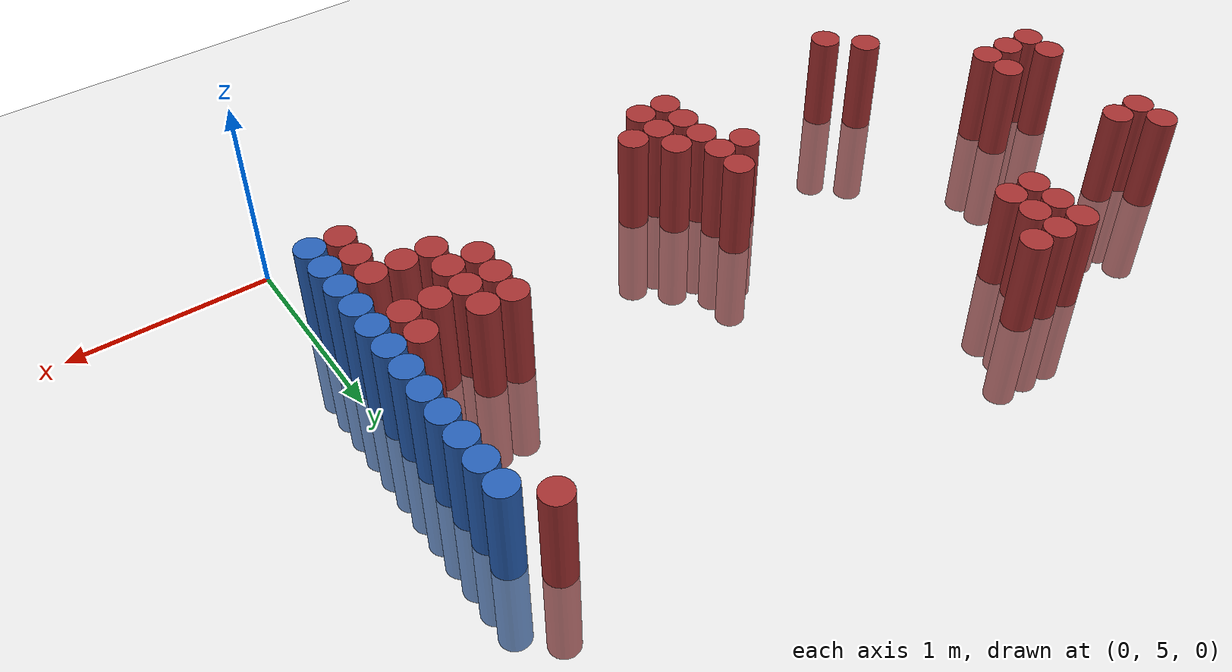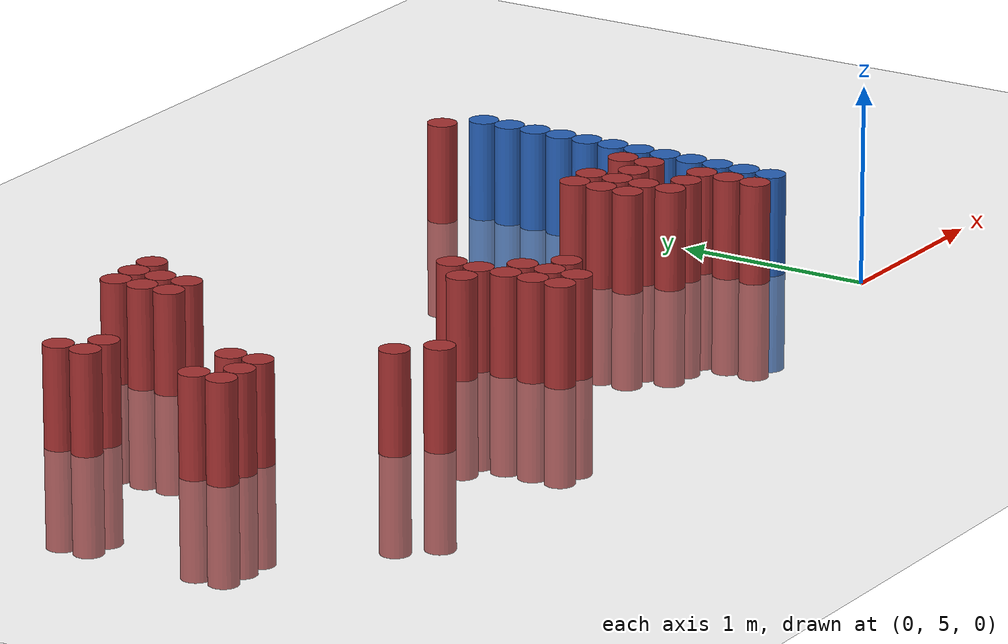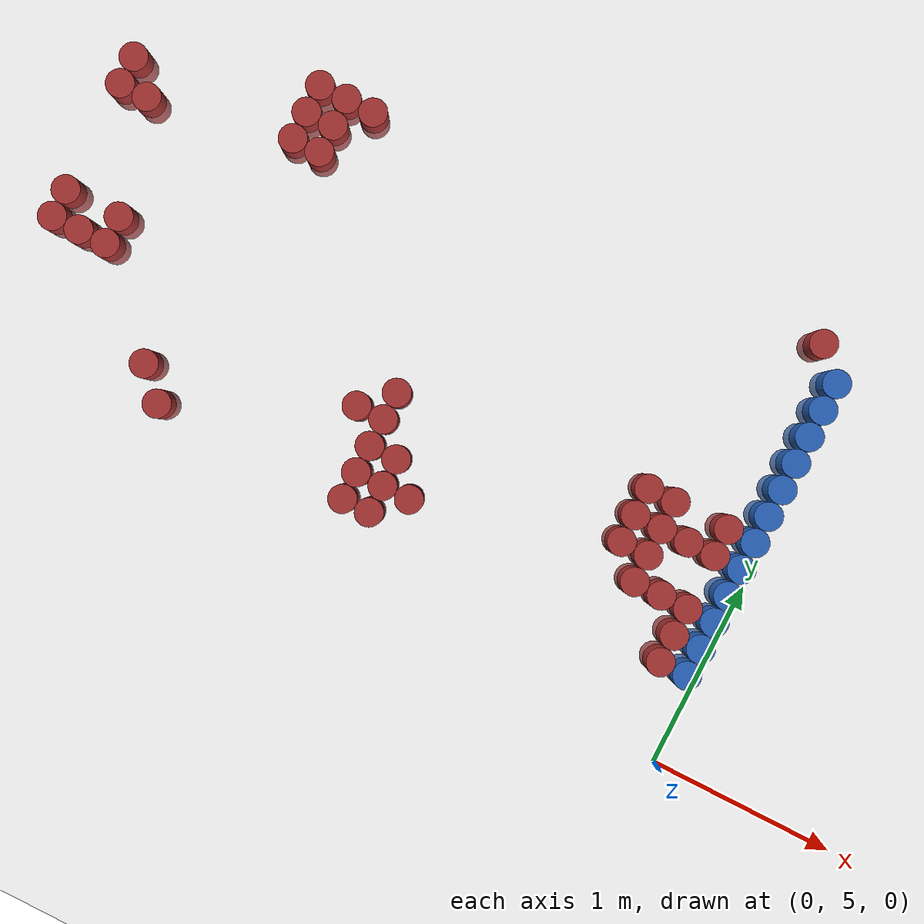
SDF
<sdf version="1.6">
 <world name="world_182">
  <model name="ground_plane">
   <static>1</static>
   <link name="link">
    <collision name="collision">
     <geometry><plane><normal>0 0 1</normal><size>100 100</size></plane></geometry>
     <surface><friction><ode><mu>100</mu><mu2>50</mu2></ode></friction></surface>
    </collision>
    <visual name="visual">
     <cast_shadows>0</cast_shadows>
     <geometry><plane><normal>0 0 1</normal><size>100 100</size></plane></geometry>
     <material>
      <script><uri>file://media/materials/scripts/gazebo.material</uri><name>Gazebo/Grey</name></script>
     </material>
    </visual>
   </link>
  </model>
  <model name="unit_cylinder_156">
   <static>1</static>
   <pose>-3.975000 6.075000 0.000000 0.000000 0.000000 0.000000</pose>
   <link name="link">
    <inertial>
     <mass>1</mass>
     <inertia><ixx>0.145833</ixx><ixy>0</ixy><ixz>0</ixz><iyy>0.145833</iyy><iyz>0</iyz><izz>0.125</izz></inertia>
    </inertial>
    <collision name="collision">
     <geometry><cylinder><radius>0.075000</radius><length>1</length></cylinder></geometry>
    </collision>
    <visual name="visual">
     <geometry><cylinder><radius>0.075000</radius><length>1</length></cylinder></geometry>
     <material>
      <ambient>0.648000 0.192000 0.192000 1</ambient>
      <diffuse>0.648000 0.192000 0.192000 1</diffuse>
     </material>
     <material>
      <script><name>Gazebo/Grey</name><uri>file://media/materials/scripts/gazebo.material</uri></script>
     </material>
    </visual>
   </link>
  </model>
  <model name="unit_cylinder_157">
   <static>1</static>
   <pose>-3.975000 6.225000 0.000000 0.000000 0.000000 0.000000</pose>
   <link name="link">
    <inertial>
     <mass>1</mass>
     <inertia><ixx>0.145833</ixx><ixy>0</ixy><ixz>0</ixz><iyy>0.145833</iyy><iyz>0</iyz><izz>0.125</izz></inertia>
    </inertial>
    <collision name="collision">
     <geometry><cylinder><radius>0.075000</radius><length>1</length></cylinder></geometry>
    </collision>
    <visual name="visual">
     <geometry><cylinder><radius>0.075000</radius><length>1</length></cylinder></geometry>
     <material>
      <ambient>0.648000 0.192000 0.192000 1</ambient>
      <diffuse>0.648000 0.192000 0.192000 1</diffuse>
     </material>
     <material>
      <script><name>Gazebo/Grey</name><uri>file://media/materials/scripts/gazebo.material</uri></script>
     </material>
    </visual>
   </link>
  </model>
  <model name="unit_cylinder_158">
   <static>1</static>
   <pose>-3.975000 6.825000 0.000000 0.000000 0.000000 0.000000</pose>
   <link name="link">
    <inertial>
     <mass>1</mass>
     <inertia><ixx>0.145833</ixx><ixy>0</ixy><ixz>0</ixz><iyy>0.145833</iyy><iyz>0</iyz><izz>0.125</izz></inertia>
    </inertial>
    <collision name="collision">
     <geometry><cylinder><radius>0.075000</radius><length>1</length></cylinder></geometry>
    </collision>
    <visual name="visual">
     <geometry><cylinder><radius>0.075000</radius><length>1</length></cylinder></geometry>
     <material>
      <ambient>0.648000 0.192000 0.192000 1</ambient>
      <diffuse>0.648000 0.192000 0.192000 1</diffuse>
     </material>
     <material>
      <script><name>Gazebo/Grey</name><uri>file://media/materials/scripts/gazebo.material</uri></script>
     </material>
    </visual>
   </link>
  </model>
  <model name="unit_cylinder_159">
   <static>1</static>
   <pose>-3.975000 6.975000 0.000000 0.000000 0.000000 0.000000</pose>
   <link name="link">
    <inertial>
     <mass>1</mass>
     <inertia><ixx>0.145833</ixx><ixy>0</ixy><ixz>0</ixz><iyy>0.145833</iyy><iyz>0</iyz><izz>0.125</izz></inertia>
    </inertial>
    <collision name="collision">
     <geometry><cylinder><radius>0.075000</radius><length>1</length></cylinder></geometry>
    </collision>
    <visual name="visual">
     <geometry><cylinder><radius>0.075000</radius><length>1</length></cylinder></geometry>
     <material>
      <ambient>0.648000 0.192000 0.192000 1</ambient>
      <diffuse>0.648000 0.192000 0.192000 1</diffuse>
     </material>
     <material>
      <script><name>Gazebo/Grey</name><uri>file://media/materials/scripts/gazebo.material</uri></script>
     </material>
    </visual>
   </link>
  </model>
  <model name="unit_cylinder_163">
   <static>1</static>
   <pose>-3.825000 6.075000 0.000000 0.000000 0.000000 0.000000</pose>
   <link name="link">
    <inertial>
     <mass>1</mass>
     <inertia><ixx>0.145833</ixx><ixy>0</ixy><ixz>0</ixz><iyy>0.145833</iyy><iyz>0</iyz><izz>0.125</izz></inertia>
    </inertial>
    <collision name="collision">
     <geometry><cylinder><radius>0.075000</radius><length>1</length></cylinder></geometry>
    </collision>
    <visual name="visual">
     <geometry><cylinder><radius>0.075000</radius><length>1</length></cylinder></geometry>
     <material>
      <ambient>0.648000 0.192000 0.192000 1</ambient>
      <diffuse>0.648000 0.192000 0.192000 1</diffuse>
     </material>
     <material>
      <script><name>Gazebo/Grey</name><uri>file://media/materials/scripts/gazebo.material</uri></script>
     </material>
    </visual>
   </link>
  </model>
  <model name="unit_cylinder_164">
   <static>1</static>
   <pose>-3.825000 6.825000 0.000000 0.000000 0.000000 0.000000</pose>
   <link name="link">
    <inertial>
     <mass>1</mass>
     <inertia><ixx>0.145833</ixx><ixy>0</ixy><ixz>0</ixz><iyy>0.145833</iyy><iyz>0</iyz><izz>0.125</izz></inertia>
    </inertial>
    <collision name="collision">
     <geometry><cylinder><radius>0.075000</radius><length>1</length></cylinder></geometry>
    </collision>
    <visual name="visual">
     <geometry><cylinder><radius>0.075000</radius><length>1</length></cylinder></geometry>
     <material>
      <ambient>0.648000 0.192000 0.192000 1</ambient>
      <diffuse>0.648000 0.192000 0.192000 1</diffuse>
     </material>
     <material>
      <script><name>Gazebo/Grey</name><uri>file://media/materials/scripts/gazebo.material</uri></script>
     </material>
    </visual>
   </link>
  </model>
  <model name="unit_cylinder_165">
   <static>1</static>
   <pose>-3.675000 6.075000 0.000000 0.000000 0.000000 0.000000</pose>
   <link name="link">
    <inertial>
     <mass>1</mass>
     <inertia><ixx>0.145833</ixx><ixy>0</ixy><ixz>0</ixz><iyy>0.145833</iyy><iyz>0</iyz><izz>0.125</izz></inertia>
    </inertial>
    <collision name="collision">
     <geometry><cylinder><radius>0.075000</radius><length>1</length></cylinder></geometry>
    </collision>
    <visual name="visual">
     <geometry><cylinder><radius>0.075000</radius><length>1</length></cylinder></geometry>
     <material>
      <ambient>0.648000 0.192000 0.192000 1</ambient>
      <diffuse>0.648000 0.192000 0.192000 1</diffuse>
     </material>
     <material>
      <script><name>Gazebo/Grey</name><uri>file://media/materials/scripts/gazebo.material</uri></script>
     </material>
    </visual>
   </link>
  </model>
  <model name="unit_cylinder_166">
   <static>1</static>
   <pose>-3.675000 6.225000 0.000000 0.000000 0.000000 0.000000</pose>
   <link name="link">
    <inertial>
     <mass>1</mass>
     <inertia><ixx>0.145833</ixx><ixy>0</ixy><ixz>0</ixz><iyy>0.145833</iyy><iyz>0</iyz><izz>0.125</izz></inertia>
    </inertial>
    <collision name="collision">
     <geometry><cylinder><radius>0.075000</radius><length>1</length></cylinder></geometry>
    </collision>
    <visual name="visual">
     <geometry><cylinder><radius>0.075000</radius><length>1</length></cylinder></geometry>
     <material>
      <ambient>0.648000 0.192000 0.192000 1</ambient>
      <diffuse>0.648000 0.192000 0.192000 1</diffuse>
     </material>
     <material>
      <script><name>Gazebo/Grey</name><uri>file://media/materials/scripts/gazebo.material</uri></script>
     </material>
    </visual>
   </link>
  </model>
  <model name="unit_cylinder_170">
   <static>1</static>
   <pose>-3.225000 5.625000 0.000000 0.000000 0.000000 0.000000</pose>
   <link name="link">
    <inertial>
     <mass>1</mass>
     <inertia><ixx>0.145833</ixx><ixy>0</ixy><ixz>0</ixz><iyy>0.145833</iyy><iyz>0</iyz><izz>0.125</izz></inertia>
    </inertial>
    <collision name="collision">
     <geometry><cylinder><radius>0.075000</radius><length>1</length></cylinder></geometry>
    </collision>
    <visual name="visual">
     <geometry><cylinder><radius>0.075000</radius><length>1</length></cylinder></geometry>
     <material>
      <ambient>0.648000 0.192000 0.192000 1</ambient>
      <diffuse>0.648000 0.192000 0.192000 1</diffuse>
     </material>
     <material>
      <script><name>Gazebo/Grey</name><uri>file://media/materials/scripts/gazebo.material</uri></script>
     </material>
    </visual>
   </link>
  </model>
  <model name="unit_cylinder_173">
   <static>1</static>
   <pose>-3.075000 5.475000 0.000000 0.000000 0.000000 0.000000</pose>
   <link name="link">
    <inertial>
     <mass>1</mass>
     <inertia><ixx>0.145833</ixx><ixy>0</ixy><ixz>0</ixz><iyy>0.145833</iyy><iyz>0</iyz><izz>0.125</izz></inertia>
    </inertial>
    <collision name="collision">
     <geometry><cylinder><radius>0.075000</radius><length>1</length></cylinder></geometry>
    </collision>
    <visual name="visual">
     <geometry><cylinder><radius>0.075000</radius><length>1</length></cylinder></geometry>
     <material>
      <ambient>0.648000 0.192000 0.192000 1</ambient>
      <diffuse>0.648000 0.192000 0.192000 1</diffuse>
     </material>
     <material>
      <script><name>Gazebo/Grey</name><uri>file://media/materials/scripts/gazebo.material</uri></script>
     </material>
    </visual>
   </link>
  </model>
  <model name="unit_cylinder_174">
   <static>1</static>
   <pose>-3.075000 6.975000 0.000000 0.000000 0.000000 0.000000</pose>
   <link name="link">
    <inertial>
     <mass>1</mass>
     <inertia><ixx>0.145833</ixx><ixy>0</ixy><ixz>0</ixz><iyy>0.145833</iyy><iyz>0</iyz><izz>0.125</izz></inertia>
    </inertial>
    <collision name="collision">
     <geometry><cylinder><radius>0.075000</radius><length>1</length></cylinder></geometry>
    </collision>
    <visual name="visual">
     <geometry><cylinder><radius>0.075000</radius><length>1</length></cylinder></geometry>
     <material>
      <ambient>0.648000 0.192000 0.192000 1</ambient>
      <diffuse>0.648000 0.192000 0.192000 1</diffuse>
     </material>
     <material>
      <script><name>Gazebo/Grey</name><uri>file://media/materials/scripts/gazebo.material</uri></script>
     </material>
    </visual>
   </link>
  </model>
  <model name="unit_cylinder_175">
   <static>1</static>
   <pose>-3.075000 7.125000 0.000000 0.000000 0.000000 0.000000</pose>
   <link name="link">
    <inertial>
     <mass>1</mass>
     <inertia><ixx>0.145833</ixx><ixy>0</ixy><ixz>0</ixz><iyy>0.145833</iyy><iyz>0</iyz><izz>0.125</izz></inertia>
    </inertial>
    <collision name="collision">
     <geometry><cylinder><radius>0.075000</radius><length>1</length></cylinder></geometry>
    </collision>
    <visual name="visual">
     <geometry><cylinder><radius>0.075000</radius><length>1</length></cylinder></geometry>
     <material>
      <ambient>0.648000 0.192000 0.192000 1</ambient>
      <diffuse>0.648000 0.192000 0.192000 1</diffuse>
     </material>
     <material>
      <script><name>Gazebo/Grey</name><uri>file://media/materials/scripts/gazebo.material</uri></script>
     </material>
    </visual>
   </link>
  </model>
  <model name="unit_cylinder_176">
   <static>1</static>
   <pose>-3.075000 7.275000 0.000000 0.000000 0.000000 0.000000</pose>
   <link name="link">
    <inertial>
     <mass>1</mass>
     <inertia><ixx>0.145833</ixx><ixy>0</ixy><ixz>0</ixz><iyy>0.145833</iyy><iyz>0</iyz><izz>0.125</izz></inertia>
    </inertial>
    <collision name="collision">
     <geometry><cylinder><radius>0.075000</radius><length>1</length></cylinder></geometry>
    </collision>
    <visual name="visual">
     <geometry><cylinder><radius>0.075000</radius><length>1</length></cylinder></geometry>
     <material>
      <ambient>0.648000 0.192000 0.192000 1</ambient>
      <diffuse>0.648000 0.192000 0.192000 1</diffuse>
     </material>
     <material>
      <script><name>Gazebo/Grey</name><uri>file://media/materials/scripts/gazebo.material</uri></script>
     </material>
    </visual>
   </link>
  </model>
  <model name="unit_cylinder_178">
   <static>1</static>
   <pose>-2.925000 6.975000 0.000000 0.000000 0.000000 0.000000</pose>
   <link name="link">
    <inertial>
     <mass>1</mass>
     <inertia><ixx>0.145833</ixx><ixy>0</ixy><ixz>0</ixz><iyy>0.145833</iyy><iyz>0</iyz><izz>0.125</izz></inertia>
    </inertial>
    <collision name="collision">
     <geometry><cylinder><radius>0.075000</radius><length>1</length></cylinder></geometry>
    </collision>
    <visual name="visual">
     <geometry><cylinder><radius>0.075000</radius><length>1</length></cylinder></geometry>
     <material>
      <ambient>0.648000 0.192000 0.192000 1</ambient>
      <diffuse>0.648000 0.192000 0.192000 1</diffuse>
     </material>
     <material>
      <script><name>Gazebo/Grey</name><uri>file://media/materials/scripts/gazebo.material</uri></script>
     </material>
    </visual>
   </link>
  </model>
  <model name="unit_cylinder_179">
   <static>1</static>
   <pose>-2.925000 7.125000 0.000000 0.000000 0.000000 0.000000</pose>
   <link name="link">
    <inertial>
     <mass>1</mass>
     <inertia><ixx>0.145833</ixx><ixy>0</ixy><ixz>0</ixz><iyy>0.145833</iyy><iyz>0</iyz><izz>0.125</izz></inertia>
    </inertial>
    <collision name="collision">
     <geometry><cylinder><radius>0.075000</radius><length>1</length></cylinder></geometry>
    </collision>
    <visual name="visual">
     <geometry><cylinder><radius>0.075000</radius><length>1</length></cylinder></geometry>
     <material>
      <ambient>0.648000 0.192000 0.192000 1</ambient>
      <diffuse>0.648000 0.192000 0.192000 1</diffuse>
     </material>
     <material>
      <script><name>Gazebo/Grey</name><uri>file://media/materials/scripts/gazebo.material</uri></script>
     </material>
    </visual>
   </link>
  </model>
  <model name="unit_cylinder_180">
   <static>1</static>
   <pose>-2.925000 7.275000 0.000000 0.000000 0.000000 0.000000</pose>
   <link name="link">
    <inertial>
     <mass>1</mass>
     <inertia><ixx>0.145833</ixx><ixy>0</ixy><ixz>0</ixz><iyy>0.145833</iyy><iyz>0</iyz><izz>0.125</izz></inertia>
    </inertial>
    <collision name="collision">
     <geometry><cylinder><radius>0.075000</radius><length>1</length></cylinder></geometry>
    </collision>
    <visual name="visual">
     <geometry><cylinder><radius>0.075000</radius><length>1</length></cylinder></geometry>
     <material>
      <ambient>0.648000 0.192000 0.192000 1</ambient>
      <diffuse>0.648000 0.192000 0.192000 1</diffuse>
     </material>
     <material>
      <script><name>Gazebo/Grey</name><uri>file://media/materials/scripts/gazebo.material</uri></script>
     </material>
    </visual>
   </link>
  </model>
  <model name="unit_cylinder_182">
   <static>1</static>
   <pose>-2.775000 7.275000 0.000000 0.000000 0.000000 0.000000</pose>
   <link name="link">
    <inertial>
     <mass>1</mass>
     <inertia><ixx>0.145833</ixx><ixy>0</ixy><ixz>0</ixz><iyy>0.145833</iyy><iyz>0</iyz><izz>0.125</izz></inertia>
    </inertial>
    <collision name="collision">
     <geometry><cylinder><radius>0.075000</radius><length>1</length></cylinder></geometry>
    </collision>
    <visual name="visual">
     <geometry><cylinder><radius>0.075000</radius><length>1</length></cylinder></geometry>
     <material>
      <ambient>0.648000 0.192000 0.192000 1</ambient>
      <diffuse>0.648000 0.192000 0.192000 1</diffuse>
     </material>
     <material>
      <script><name>Gazebo/Grey</name><uri>file://media/materials/scripts/gazebo.material</uri></script>
     </material>
    </visual>
   </link>
  </model>
  <model name="unit_cylinder_195">
   <static>1</static>
   <pose>-2.175000 5.925000 0.000000 0.000000 0.000000 0.000000</pose>
   <link name="link">
    <inertial>
     <mass>1</mass>
     <inertia><ixx>0.145833</ixx><ixy>0</ixy><ixz>0</ixz><iyy>0.145833</iyy><iyz>0</iyz><izz>0.125</izz></inertia>
    </inertial>
    <collision name="collision">
     <geometry><cylinder><radius>0.075000</radius><length>1</length></cylinder></geometry>
    </collision>
    <visual name="visual">
     <geometry><cylinder><radius>0.075000</radius><length>1</length></cylinder></geometry>
     <material>
      <ambient>0.648000 0.192000 0.192000 1</ambient>
      <diffuse>0.648000 0.192000 0.192000 1</diffuse>
     </material>
     <material>
      <script><name>Gazebo/Grey</name><uri>file://media/materials/scripts/gazebo.material</uri></script>
     </material>
    </visual>
   </link>
  </model>
  <model name="unit_cylinder_197">
   <static>1</static>
   <pose>-2.025000 5.475000 0.000000 0.000000 0.000000 0.000000</pose>
   <link name="link">
    <inertial>
     <mass>1</mass>
     <inertia><ixx>0.145833</ixx><ixy>0</ixy><ixz>0</ixz><iyy>0.145833</iyy><iyz>0</iyz><izz>0.125</izz></inertia>
    </inertial>
    <collision name="collision">
     <geometry><cylinder><radius>0.075000</radius><length>1</length></cylinder></geometry>
    </collision>
    <visual name="visual">
     <geometry><cylinder><radius>0.075000</radius><length>1</length></cylinder></geometry>
     <material>
      <ambient>0.648000 0.192000 0.192000 1</ambient>
      <diffuse>0.648000 0.192000 0.192000 1</diffuse>
     </material>
     <material>
      <script><name>Gazebo/Grey</name><uri>file://media/materials/scripts/gazebo.material</uri></script>
     </material>
    </visual>
   </link>
  </model>
  <model name="unit_cylinder_198">
   <static>1</static>
   <pose>-2.025000 5.625000 0.000000 0.000000 0.000000 0.000000</pose>
   <link name="link">
    <inertial>
     <mass>1</mass>
     <inertia><ixx>0.145833</ixx><ixy>0</ixy><ixz>0</ixz><iyy>0.145833</iyy><iyz>0</iyz><izz>0.125</izz></inertia>
    </inertial>
    <collision name="collision">
     <geometry><cylinder><radius>0.075000</radius><length>1</length></cylinder></geometry>
    </collision>
    <visual name="visual">
     <geometry><cylinder><radius>0.075000</radius><length>1</length></cylinder></geometry>
     <material>
      <ambient>0.648000 0.192000 0.192000 1</ambient>
      <diffuse>0.648000 0.192000 0.192000 1</diffuse>
     </material>
     <material>
      <script><name>Gazebo/Grey</name><uri>file://media/materials/scripts/gazebo.material</uri></script>
     </material>
    </visual>
   </link>
  </model>
  <model name="unit_cylinder_199">
   <static>1</static>
   <pose>-2.025000 5.775000 0.000000 0.000000 0.000000 0.000000</pose>
   <link name="link">
    <inertial>
     <mass>1</mass>
     <inertia><ixx>0.145833</ixx><ixy>0</ixy><ixz>0</ixz><iyy>0.145833</iyy><iyz>0</iyz><izz>0.125</izz></inertia>
    </inertial>
    <collision name="collision">
     <geometry><cylinder><radius>0.075000</radius><length>1</length></cylinder></geometry>
    </collision>
    <visual name="visual">
     <geometry><cylinder><radius>0.075000</radius><length>1</length></cylinder></geometry>
     <material>
      <ambient>0.648000 0.192000 0.192000 1</ambient>
      <diffuse>0.648000 0.192000 0.192000 1</diffuse>
     </material>
     <material>
      <script><name>Gazebo/Grey</name><uri>file://media/materials/scripts/gazebo.material</uri></script>
     </material>
    </visual>
   </link>
  </model>
  <model name="unit_cylinder_200">
   <static>1</static>
   <pose>-2.025000 5.925000 0.000000 0.000000 0.000000 0.000000</pose>
   <link name="link">
    <inertial>
     <mass>1</mass>
     <inertia><ixx>0.145833</ixx><ixy>0</ixy><ixz>0</ixz><iyy>0.145833</iyy><iyz>0</iyz><izz>0.125</izz></inertia>
    </inertial>
    <collision name="collision">
     <geometry><cylinder><radius>0.075000</radius><length>1</length></cylinder></geometry>
    </collision>
    <visual name="visual">
     <geometry><cylinder><radius>0.075000</radius><length>1</length></cylinder></geometry>
     <material>
      <ambient>0.648000 0.192000 0.192000 1</ambient>
      <diffuse>0.648000 0.192000 0.192000 1</diffuse>
     </material>
     <material>
      <script><name>Gazebo/Grey</name><uri>file://media/materials/scripts/gazebo.material</uri></script>
     </material>
    </visual>
   </link>
  </model>
  <model name="unit_cylinder_201">
   <static>1</static>
   <pose>-2.025000 6.075000 0.000000 0.000000 0.000000 0.000000</pose>
   <link name="link">
    <inertial>
     <mass>1</mass>
     <inertia><ixx>0.145833</ixx><ixy>0</ixy><ixz>0</ixz><iyy>0.145833</iyy><iyz>0</iyz><izz>0.125</izz></inertia>
    </inertial>
    <collision name="collision">
     <geometry><cylinder><radius>0.075000</radius><length>1</length></cylinder></geometry>
    </collision>
    <visual name="visual">
     <geometry><cylinder><radius>0.075000</radius><length>1</length></cylinder></geometry>
     <material>
      <ambient>0.648000 0.192000 0.192000 1</ambient>
      <diffuse>0.648000 0.192000 0.192000 1</diffuse>
     </material>
     <material>
      <script><name>Gazebo/Grey</name><uri>file://media/materials/scripts/gazebo.material</uri></script>
     </material>
    </visual>
   </link>
  </model>
  <model name="unit_cylinder_205">
   <static>1</static>
   <pose>-1.875000 5.475000 0.000000 0.000000 0.000000 0.000000</pose>
   <link name="link">
    <inertial>
     <mass>1</mass>
     <inertia><ixx>0.145833</ixx><ixy>0</ixy><ixz>0</ixz><iyy>0.145833</iyy><iyz>0</iyz><izz>0.125</izz></inertia>
    </inertial>
    <collision name="collision">
     <geometry><cylinder><radius>0.075000</radius><length>1</length></cylinder></geometry>
    </collision>
    <visual name="visual">
     <geometry><cylinder><radius>0.075000</radius><length>1</length></cylinder></geometry>
     <material>
      <ambient>0.648000 0.192000 0.192000 1</ambient>
      <diffuse>0.648000 0.192000 0.192000 1</diffuse>
     </material>
     <material>
      <script><name>Gazebo/Grey</name><uri>file://media/materials/scripts/gazebo.material</uri></script>
     </material>
    </visual>
   </link>
  </model>
  <model name="unit_cylinder_206">
   <static>1</static>
   <pose>-1.875000 5.625000 0.000000 0.000000 0.000000 0.000000</pose>
   <link name="link">
    <inertial>
     <mass>1</mass>
     <inertia><ixx>0.145833</ixx><ixy>0</ixy><ixz>0</ixz><iyy>0.145833</iyy><iyz>0</iyz><izz>0.125</izz></inertia>
    </inertial>
    <collision name="collision">
     <geometry><cylinder><radius>0.075000</radius><length>1</length></cylinder></geometry>
    </collision>
    <visual name="visual">
     <geometry><cylinder><radius>0.075000</radius><length>1</length></cylinder></geometry>
     <material>
      <ambient>0.648000 0.192000 0.192000 1</ambient>
      <diffuse>0.648000 0.192000 0.192000 1</diffuse>
     </material>
     <material>
      <script><name>Gazebo/Grey</name><uri>file://media/materials/scripts/gazebo.material</uri></script>
     </material>
    </visual>
   </link>
  </model>
  <model name="unit_cylinder_207">
   <static>1</static>
   <pose>-1.875000 5.775000 0.000000 0.000000 0.000000 0.000000</pose>
   <link name="link">
    <inertial>
     <mass>1</mass>
     <inertia><ixx>0.145833</ixx><ixy>0</ixy><ixz>0</ixz><iyy>0.145833</iyy><iyz>0</iyz><izz>0.125</izz></inertia>
    </inertial>
    <collision name="collision">
     <geometry><cylinder><radius>0.075000</radius><length>1</length></cylinder></geometry>
    </collision>
    <visual name="visual">
     <geometry><cylinder><radius>0.075000</radius><length>1</length></cylinder></geometry>
     <material>
      <ambient>0.648000 0.192000 0.192000 1</ambient>
      <diffuse>0.648000 0.192000 0.192000 1</diffuse>
     </material>
     <material>
      <script><name>Gazebo/Grey</name><uri>file://media/materials/scripts/gazebo.material</uri></script>
     </material>
    </visual>
   </link>
  </model>
  <model name="unit_cylinder_213">
   <static>1</static>
   <pose>-1.725000 5.625000 0.000000 0.000000 0.000000 0.000000</pose>
   <link name="link">
    <inertial>
     <mass>1</mass>
     <inertia><ixx>0.145833</ixx><ixy>0</ixy><ixz>0</ixz><iyy>0.145833</iyy><iyz>0</iyz><izz>0.125</izz></inertia>
    </inertial>
    <collision name="collision">
     <geometry><cylinder><radius>0.075000</radius><length>1</length></cylinder></geometry>
    </collision>
    <visual name="visual">
     <geometry><cylinder><radius>0.075000</radius><length>1</length></cylinder></geometry>
     <material>
      <ambient>0.648000 0.192000 0.192000 1</ambient>
      <diffuse>0.648000 0.192000 0.192000 1</diffuse>
     </material>
     <material>
      <script><name>Gazebo/Grey</name><uri>file://media/materials/scripts/gazebo.material</uri></script>
     </material>
    </visual>
   </link>
  </model>
  <model name="unit_cylinder_221">
   <static>1</static>
   <pose>-0.675000 5.925000 0.000000 0.000000 0.000000 0.000000</pose>
   <link name="link">
    <inertial>
     <mass>1</mass>
     <inertia><ixx>0.145833</ixx><ixy>0</ixy><ixz>0</ixz><iyy>0.145833</iyy><iyz>0</iyz><izz>0.125</izz></inertia>
    </inertial>
    <collision name="collision">
     <geometry><cylinder><radius>0.075000</radius><length>1</length></cylinder></geometry>
    </collision>
    <visual name="visual">
     <geometry><cylinder><radius>0.075000</radius><length>1</length></cylinder></geometry>
     <material>
      <ambient>0.648000 0.192000 0.192000 1</ambient>
      <diffuse>0.648000 0.192000 0.192000 1</diffuse>
     </material>
     <material>
      <script><name>Gazebo/Grey</name><uri>file://media/materials/scripts/gazebo.material</uri></script>
     </material>
    </visual>
   </link>
  </model>
  <model name="unit_cylinder_222">
   <static>1</static>
   <pose>-0.675000 6.075000 0.000000 0.000000 0.000000 0.000000</pose>
   <link name="link">
    <inertial>
     <mass>1</mass>
     <inertia><ixx>0.145833</ixx><ixy>0</ixy><ixz>0</ixz><iyy>0.145833</iyy><iyz>0</iyz><izz>0.125</izz></inertia>
    </inertial>
    <collision name="collision">
     <geometry><cylinder><radius>0.075000</radius><length>1</length></cylinder></geometry>
    </collision>
    <visual name="visual">
     <geometry><cylinder><radius>0.075000</radius><length>1</length></cylinder></geometry>
     <material>
      <ambient>0.648000 0.192000 0.192000 1</ambient>
      <diffuse>0.648000 0.192000 0.192000 1</diffuse>
     </material>
     <material>
      <script><name>Gazebo/Grey</name><uri>file://media/materials/scripts/gazebo.material</uri></script>
     </material>
    </visual>
   </link>
  </model>
  <model name="unit_cylinder_223">
   <static>1</static>
   <pose>-0.675000 6.225000 0.000000 0.000000 0.000000 0.000000</pose>
   <link name="link">
    <inertial>
     <mass>1</mass>
     <inertia><ixx>0.145833</ixx><ixy>0</ixy><ixz>0</ixz><iyy>0.145833</iyy><iyz>0</iyz><izz>0.125</izz></inertia>
    </inertial>
    <collision name="collision">
     <geometry><cylinder><radius>0.075000</radius><length>1</length></cylinder></geometry>
    </collision>
    <visual name="visual">
     <geometry><cylinder><radius>0.075000</radius><length>1</length></cylinder></geometry>
     <material>
      <ambient>0.648000 0.192000 0.192000 1</ambient>
      <diffuse>0.648000 0.192000 0.192000 1</diffuse>
     </material>
     <material>
      <script><name>Gazebo/Grey</name><uri>file://media/materials/scripts/gazebo.material</uri></script>
     </material>
    </visual>
   </link>
  </model>
  <model name="unit_cylinder_224">
   <static>1</static>
   <pose>-0.525000 5.775000 0.000000 0.000000 0.000000 0.000000</pose>
   <link name="link">
    <inertial>
     <mass>1</mass>
     <inertia><ixx>0.145833</ixx><ixy>0</ixy><ixz>0</ixz><iyy>0.145833</iyy><iyz>0</iyz><izz>0.125</izz></inertia>
    </inertial>
    <collision name="collision">
     <geometry><cylinder><radius>0.075000</radius><length>1</length></cylinder></geometry>
    </collision>
    <visual name="visual">
     <geometry><cylinder><radius>0.075000</radius><length>1</length></cylinder></geometry>
     <material>
      <ambient>0.648000 0.192000 0.192000 1</ambient>
      <diffuse>0.648000 0.192000 0.192000 1</diffuse>
     </material>
     <material>
      <script><name>Gazebo/Grey</name><uri>file://media/materials/scripts/gazebo.material</uri></script>
     </material>
    </visual>
   </link>
  </model>
  <model name="unit_cylinder_225">
   <static>1</static>
   <pose>-0.525000 5.925000 0.000000 0.000000 0.000000 0.000000</pose>
   <link name="link">
    <inertial>
     <mass>1</mass>
     <inertia><ixx>0.145833</ixx><ixy>0</ixy><ixz>0</ixz><iyy>0.145833</iyy><iyz>0</iyz><izz>0.125</izz></inertia>
    </inertial>
    <collision name="collision">
     <geometry><cylinder><radius>0.075000</radius><length>1</length></cylinder></geometry>
    </collision>
    <visual name="visual">
     <geometry><cylinder><radius>0.075000</radius><length>1</length></cylinder></geometry>
     <material>
      <ambient>0.648000 0.192000 0.192000 1</ambient>
      <diffuse>0.648000 0.192000 0.192000 1</diffuse>
     </material>
     <material>
      <script><name>Gazebo/Grey</name><uri>file://media/materials/scripts/gazebo.material</uri></script>
     </material>
    </visual>
   </link>
  </model>
  <model name="unit_cylinder_226">
   <static>1</static>
   <pose>-0.525000 6.075000 0.000000 0.000000 0.000000 0.000000</pose>
   <link name="link">
    <inertial>
     <mass>1</mass>
     <inertia><ixx>0.145833</ixx><ixy>0</ixy><ixz>0</ixz><iyy>0.145833</iyy><iyz>0</iyz><izz>0.125</izz></inertia>
    </inertial>
    <collision name="collision">
     <geometry><cylinder><radius>0.075000</radius><length>1</length></cylinder></geometry>
    </collision>
    <visual name="visual">
     <geometry><cylinder><radius>0.075000</radius><length>1</length></cylinder></geometry>
     <material>
      <ambient>0.648000 0.192000 0.192000 1</ambient>
      <diffuse>0.648000 0.192000 0.192000 1</diffuse>
     </material>
     <material>
      <script><name>Gazebo/Grey</name><uri>file://media/materials/scripts/gazebo.material</uri></script>
     </material>
    </visual>
   </link>
  </model>
  <model name="unit_cylinder_227">
   <static>1</static>
   <pose>-0.525000 6.225000 0.000000 0.000000 0.000000 0.000000</pose>
   <link name="link">
    <inertial>
     <mass>1</mass>
     <inertia><ixx>0.145833</ixx><ixy>0</ixy><ixz>0</ixz><iyy>0.145833</iyy><iyz>0</iyz><izz>0.125</izz></inertia>
    </inertial>
    <collision name="collision">
     <geometry><cylinder><radius>0.075000</radius><length>1</length></cylinder></geometry>
    </collision>
    <visual name="visual">
     <geometry><cylinder><radius>0.075000</radius><length>1</length></cylinder></geometry>
     <material>
      <ambient>0.648000 0.192000 0.192000 1</ambient>
      <diffuse>0.648000 0.192000 0.192000 1</diffuse>
     </material>
     <material>
      <script><name>Gazebo/Grey</name><uri>file://media/materials/scripts/gazebo.material</uri></script>
     </material>
    </visual>
   </link>
  </model>
  <model name="unit_cylinder_228">
   <static>1</static>
   <pose>-0.375000 5.775000 0.000000 0.000000 0.000000 0.000000</pose>
   <link name="link">
    <inertial>
     <mass>1</mass>
     <inertia><ixx>0.145833</ixx><ixy>0</ixy><ixz>0</ixz><iyy>0.145833</iyy><iyz>0</iyz><izz>0.125</izz></inertia>
    </inertial>
    <collision name="collision">
     <geometry><cylinder><radius>0.075000</radius><length>1</length></cylinder></geometry>
    </collision>
    <visual name="visual">
     <geometry><cylinder><radius>0.075000</radius><length>1</length></cylinder></geometry>
     <material>
      <ambient>0.648000 0.192000 0.192000 1</ambient>
      <diffuse>0.648000 0.192000 0.192000 1</diffuse>
     </material>
     <material>
      <script><name>Gazebo/Grey</name><uri>file://media/materials/scripts/gazebo.material</uri></script>
     </material>
    </visual>
   </link>
  </model>
  <model name="unit_cylinder_229">
   <static>1</static>
   <pose>-0.375000 6.075000 0.000000 0.000000 0.000000 0.000000</pose>
   <link name="link">
    <inertial>
     <mass>1</mass>
     <inertia><ixx>0.145833</ixx><ixy>0</ixy><ixz>0</ixz><iyy>0.145833</iyy><iyz>0</iyz><izz>0.125</izz></inertia>
    </inertial>
    <collision name="collision">
     <geometry><cylinder><radius>0.075000</radius><length>1</length></cylinder></geometry>
    </collision>
    <visual name="visual">
     <geometry><cylinder><radius>0.075000</radius><length>1</length></cylinder></geometry>
     <material>
      <ambient>0.648000 0.192000 0.192000 1</ambient>
      <diffuse>0.648000 0.192000 0.192000 1</diffuse>
     </material>
     <material>
      <script><name>Gazebo/Grey</name><uri>file://media/materials/scripts/gazebo.material</uri></script>
     </material>
    </visual>
   </link>
  </model>
  <model name="unit_cylinder_230">
   <static>1</static>
   <pose>-0.225000 5.475000 0.000000 0.000000 0.000000 0.000000</pose>
   <link name="link">
    <inertial>
     <mass>1</mass>
     <inertia><ixx>0.145833</ixx><ixy>0</ixy><ixz>0</ixz><iyy>0.145833</iyy><iyz>0</iyz><izz>0.125</izz></inertia>
    </inertial>
    <collision name="collision">
     <geometry><cylinder><radius>0.075000</radius><length>1</length></cylinder></geometry>
    </collision>
    <visual name="visual">
     <geometry><cylinder><radius>0.075000</radius><length>1</length></cylinder></geometry>
     <material>
      <ambient>0.648000 0.192000 0.192000 1</ambient>
      <diffuse>0.648000 0.192000 0.192000 1</diffuse>
     </material>
     <material>
      <script><name>Gazebo/Grey</name><uri>file://media/materials/scripts/gazebo.material</uri></script>
     </material>
    </visual>
   </link>
  </model>
  <model name="unit_cylinder_231">
   <static>1</static>
   <pose>-0.225000 5.625000 0.000000 0.000000 0.000000 0.000000</pose>
   <link name="link">
    <inertial>
     <mass>1</mass>
     <inertia><ixx>0.145833</ixx><ixy>0</ixy><ixz>0</ixz><iyy>0.145833</iyy><iyz>0</iyz><izz>0.125</izz></inertia>
    </inertial>
    <collision name="collision">
     <geometry><cylinder><radius>0.075000</radius><length>1</length></cylinder></geometry>
    </collision>
    <visual name="visual">
     <geometry><cylinder><radius>0.075000</radius><length>1</length></cylinder></geometry>
     <material>
      <ambient>0.648000 0.192000 0.192000 1</ambient>
      <diffuse>0.648000 0.192000 0.192000 1</diffuse>
     </material>
     <material>
      <script><name>Gazebo/Grey</name><uri>file://media/materials/scripts/gazebo.material</uri></script>
     </material>
    </visual>
   </link>
  </model>
  <model name="unit_cylinder_232">
   <static>1</static>
   <pose>-0.225000 5.775000 0.000000 0.000000 0.000000 0.000000</pose>
   <link name="link">
    <inertial>
     <mass>1</mass>
     <inertia><ixx>0.145833</ixx><ixy>0</ixy><ixz>0</ixz><iyy>0.145833</iyy><iyz>0</iyz><izz>0.125</izz></inertia>
    </inertial>
    <collision name="collision">
     <geometry><cylinder><radius>0.075000</radius><length>1</length></cylinder></geometry>
    </collision>
    <visual name="visual">
     <geometry><cylinder><radius>0.075000</radius><length>1</length></cylinder></geometry>
     <material>
      <ambient>0.648000 0.192000 0.192000 1</ambient>
      <diffuse>0.648000 0.192000 0.192000 1</diffuse>
     </material>
     <material>
      <script><name>Gazebo/Grey</name><uri>file://media/materials/scripts/gazebo.material</uri></script>
     </material>
    </visual>
   </link>
  </model>
  <model name="unit_cylinder_233">
   <static>1</static>
   <pose>-0.225000 6.075000 0.000000 0.000000 0.000000 0.000000</pose>
   <link name="link">
    <inertial>
     <mass>1</mass>
     <inertia><ixx>0.145833</ixx><ixy>0</ixy><ixz>0</ixz><iyy>0.145833</iyy><iyz>0</iyz><izz>0.125</izz></inertia>
    </inertial>
    <collision name="collision">
     <geometry><cylinder><radius>0.075000</radius><length>1</length></cylinder></geometry>
    </collision>
    <visual name="visual">
     <geometry><cylinder><radius>0.075000</radius><length>1</length></cylinder></geometry>
     <material>
      <ambient>0.648000 0.192000 0.192000 1</ambient>
      <diffuse>0.648000 0.192000 0.192000 1</diffuse>
     </material>
     <material>
      <script><name>Gazebo/Grey</name><uri>file://media/materials/scripts/gazebo.material</uri></script>
     </material>
    </visual>
   </link>
  </model>
  <model name="unit_cylinder_234">
   <static>1</static>
   <pose>-0.225000 6.225000 0.000000 0.000000 0.000000 0.000000</pose>
   <link name="link">
    <inertial>
     <mass>1</mass>
     <inertia><ixx>0.145833</ixx><ixy>0</ixy><ixz>0</ixz><iyy>0.145833</iyy><iyz>0</iyz><izz>0.125</izz></inertia>
    </inertial>
    <collision name="collision">
     <geometry><cylinder><radius>0.075000</radius><length>1</length></cylinder></geometry>
    </collision>
    <visual name="visual">
     <geometry><cylinder><radius>0.075000</radius><length>1</length></cylinder></geometry>
     <material>
      <ambient>0.648000 0.192000 0.192000 1</ambient>
      <diffuse>0.648000 0.192000 0.192000 1</diffuse>
     </material>
     <material>
      <script><name>Gazebo/Grey</name><uri>file://media/materials/scripts/gazebo.material</uri></script>
     </material>
    </visual>
   </link>
  </model>
  <model name="unit_cylinder_235">
   <static>1</static>
   <pose>-0.225000 7.275000 0.000000 0.000000 0.000000 0.000000</pose>
   <link name="link">
    <inertial>
     <mass>1</mass>
     <inertia><ixx>0.145833</ixx><ixy>0</ixy><ixz>0</ixz><iyy>0.145833</iyy><iyz>0</iyz><izz>0.125</izz></inertia>
    </inertial>
    <collision name="collision">
     <geometry><cylinder><radius>0.075000</radius><length>1</length></cylinder></geometry>
    </collision>
    <visual name="visual">
     <geometry><cylinder><radius>0.075000</radius><length>1</length></cylinder></geometry>
     <material>
      <ambient>0.648000 0.192000 0.192000 1</ambient>
      <diffuse>0.648000 0.192000 0.192000 1</diffuse>
     </material>
     <material>
      <script><name>Gazebo/Grey</name><uri>file://media/materials/scripts/gazebo.material</uri></script>
     </material>
    </visual>
   </link>
  </model>
  <model name="unit_cylinder_242">
   <static>1</static>
   <pose>-0.075000 5.475000 0.000000 0.000000 0.000000 0.000000</pose>
   <link name="link">
    <inertial>
     <mass>1</mass>
     <inertia><ixx>0.145833</ixx><ixy>0</ixy><ixz>0</ixz><iyy>0.145833</iyy><iyz>0</iyz><izz>0.125</izz></inertia>
    </inertial>
    <collision name="collision">
     <geometry><cylinder><radius>0.075000</radius><length>1</length></cylinder></geometry>
    </collision>
    <visual name="visual">
     <geometry><cylinder><radius>0.075000</radius><length>1</length></cylinder></geometry>
     <material>
      <ambient>0.152000 0.379000 0.720000 1</ambient>
      <diffuse>0.152000 0.379000 0.720000 1</diffuse>
     </material>
     <material>
      <script><name>Gazebo/Grey</name><uri>file://media/materials/scripts/gazebo.material</uri></script>
     </material>
    </visual>
   </link>
  </model>
  <model name="unit_cylinder_243">
   <static>1</static>
   <pose>-0.075000 5.625000 0.000000 0.000000 0.000000 0.000000</pose>
   <link name="link">
    <inertial>
     <mass>1</mass>
     <inertia><ixx>0.145833</ixx><ixy>0</ixy><ixz>0</ixz><iyy>0.145833</iyy><iyz>0</iyz><izz>0.125</izz></inertia>
    </inertial>
    <collision name="collision">
     <geometry><cylinder><radius>0.075000</radius><length>1</length></cylinder></geometry>
    </collision>
    <visual name="visual">
     <geometry><cylinder><radius>0.075000</radius><length>1</length></cylinder></geometry>
     <material>
      <ambient>0.152000 0.379000 0.720000 1</ambient>
      <diffuse>0.152000 0.379000 0.720000 1</diffuse>
     </material>
     <material>
      <script><name>Gazebo/Grey</name><uri>file://media/materials/scripts/gazebo.material</uri></script>
     </material>
    </visual>
   </link>
  </model>
  <model name="unit_cylinder_244">
   <static>1</static>
   <pose>-0.075000 5.775000 0.000000 0.000000 0.000000 0.000000</pose>
   <link name="link">
    <inertial>
     <mass>1</mass>
     <inertia><ixx>0.145833</ixx><ixy>0</ixy><ixz>0</ixz><iyy>0.145833</iyy><iyz>0</iyz><izz>0.125</izz></inertia>
    </inertial>
    <collision name="collision">
     <geometry><cylinder><radius>0.075000</radius><length>1</length></cylinder></geometry>
    </collision>
    <visual name="visual">
     <geometry><cylinder><radius>0.075000</radius><length>1</length></cylinder></geometry>
     <material>
      <ambient>0.152000 0.379000 0.720000 1</ambient>
      <diffuse>0.152000 0.379000 0.720000 1</diffuse>
     </material>
     <material>
      <script><name>Gazebo/Grey</name><uri>file://media/materials/scripts/gazebo.material</uri></script>
     </material>
    </visual>
   </link>
  </model>
  <model name="unit_cylinder_245">
   <static>1</static>
   <pose>-0.075000 5.925000 0.000000 0.000000 0.000000 0.000000</pose>
   <link name="link">
    <inertial>
     <mass>1</mass>
     <inertia><ixx>0.145833</ixx><ixy>0</ixy><ixz>0</ixz><iyy>0.145833</iyy><iyz>0</iyz><izz>0.125</izz></inertia>
    </inertial>
    <collision name="collision">
     <geometry><cylinder><radius>0.075000</radius><length>1</length></cylinder></geometry>
    </collision>
    <visual name="visual">
     <geometry><cylinder><radius>0.075000</radius><length>1</length></cylinder></geometry>
     <material>
      <ambient>0.152000 0.379000 0.720000 1</ambient>
      <diffuse>0.152000 0.379000 0.720000 1</diffuse>
     </material>
     <material>
      <script><name>Gazebo/Grey</name><uri>file://media/materials/scripts/gazebo.material</uri></script>
     </material>
    </visual>
   </link>
  </model>
  <model name="unit_cylinder_246">
   <static>1</static>
   <pose>-0.075000 6.075000 0.000000 0.000000 0.000000 0.000000</pose>
   <link name="link">
    <inertial>
     <mass>1</mass>
     <inertia><ixx>0.145833</ixx><ixy>0</ixy><ixz>0</ixz><iyy>0.145833</iyy><iyz>0</iyz><izz>0.125</izz></inertia>
    </inertial>
    <collision name="collision">
     <geometry><cylinder><radius>0.075000</radius><length>1</length></cylinder></geometry>
    </collision>
    <visual name="visual">
     <geometry><cylinder><radius>0.075000</radius><length>1</length></cylinder></geometry>
     <material>
      <ambient>0.152000 0.379000 0.720000 1</ambient>
      <diffuse>0.152000 0.379000 0.720000 1</diffuse>
     </material>
     <material>
      <script><name>Gazebo/Grey</name><uri>file://media/materials/scripts/gazebo.material</uri></script>
     </material>
    </visual>
   </link>
  </model>
  <model name="unit_cylinder_247">
   <static>1</static>
   <pose>-0.075000 6.225000 0.000000 0.000000 0.000000 0.000000</pose>
   <link name="link">
    <inertial>
     <mass>1</mass>
     <inertia><ixx>0.145833</ixx><ixy>0</ixy><ixz>0</ixz><iyy>0.145833</iyy><iyz>0</iyz><izz>0.125</izz></inertia>
    </inertial>
    <collision name="collision">
     <geometry><cylinder><radius>0.075000</radius><length>1</length></cylinder></geometry>
    </collision>
    <visual name="visual">
     <geometry><cylinder><radius>0.075000</radius><length>1</length></cylinder></geometry>
     <material>
      <ambient>0.152000 0.379000 0.720000 1</ambient>
      <diffuse>0.152000 0.379000 0.720000 1</diffuse>
     </material>
     <material>
      <script><name>Gazebo/Grey</name><uri>file://media/materials/scripts/gazebo.material</uri></script>
     </material>
    </visual>
   </link>
  </model>
  <model name="unit_cylinder_248">
   <static>1</static>
   <pose>-0.075000 6.375000 0.000000 0.000000 0.000000 0.000000</pose>
   <link name="link">
    <inertial>
     <mass>1</mass>
     <inertia><ixx>0.145833</ixx><ixy>0</ixy><ixz>0</ixz><iyy>0.145833</iyy><iyz>0</iyz><izz>0.125</izz></inertia>
    </inertial>
    <collision name="collision">
     <geometry><cylinder><radius>0.075000</radius><length>1</length></cylinder></geometry>
    </collision>
    <visual name="visual">
     <geometry><cylinder><radius>0.075000</radius><length>1</length></cylinder></geometry>
     <material>
      <ambient>0.152000 0.379000 0.720000 1</ambient>
      <diffuse>0.152000 0.379000 0.720000 1</diffuse>
     </material>
     <material>
      <script><name>Gazebo/Grey</name><uri>file://media/materials/scripts/gazebo.material</uri></script>
     </material>
    </visual>
   </link>
  </model>
  <model name="unit_cylinder_249">
   <static>1</static>
   <pose>-0.075000 6.525000 0.000000 0.000000 0.000000 0.000000</pose>
   <link name="link">
    <inertial>
     <mass>1</mass>
     <inertia><ixx>0.145833</ixx><ixy>0</ixy><ixz>0</ixz><iyy>0.145833</iyy><iyz>0</iyz><izz>0.125</izz></inertia>
    </inertial>
    <collision name="collision">
     <geometry><cylinder><radius>0.075000</radius><length>1</length></cylinder></geometry>
    </collision>
    <visual name="visual">
     <geometry><cylinder><radius>0.075000</radius><length>1</length></cylinder></geometry>
     <material>
      <ambient>0.152000 0.379000 0.720000 1</ambient>
      <diffuse>0.152000 0.379000 0.720000 1</diffuse>
     </material>
     <material>
      <script><name>Gazebo/Grey</name><uri>file://media/materials/scripts/gazebo.material</uri></script>
     </material>
    </visual>
   </link>
  </model>
  <model name="unit_cylinder_250">
   <static>1</static>
   <pose>-0.075000 6.675000 0.000000 0.000000 0.000000 0.000000</pose>
   <link name="link">
    <inertial>
     <mass>1</mass>
     <inertia><ixx>0.145833</ixx><ixy>0</ixy><ixz>0</ixz><iyy>0.145833</iyy><iyz>0</iyz><izz>0.125</izz></inertia>
    </inertial>
    <collision name="collision">
     <geometry><cylinder><radius>0.075000</radius><length>1</length></cylinder></geometry>
    </collision>
    <visual name="visual">
     <geometry><cylinder><radius>0.075000</radius><length>1</length></cylinder></geometry>
     <material>
      <ambient>0.152000 0.379000 0.720000 1</ambient>
      <diffuse>0.152000 0.379000 0.720000 1</diffuse>
     </material>
     <material>
      <script><name>Gazebo/Grey</name><uri>file://media/materials/scripts/gazebo.material</uri></script>
     </material>
    </visual>
   </link>
  </model>
  <model name="unit_cylinder_251">
   <static>1</static>
   <pose>-0.075000 6.825000 0.000000 0.000000 0.000000 0.000000</pose>
   <link name="link">
    <inertial>
     <mass>1</mass>
     <inertia><ixx>0.145833</ixx><ixy>0</ixy><ixz>0</ixz><iyy>0.145833</iyy><iyz>0</iyz><izz>0.125</izz></inertia>
    </inertial>
    <collision name="collision">
     <geometry><cylinder><radius>0.075000</radius><length>1</length></cylinder></geometry>
    </collision>
    <visual name="visual">
     <geometry><cylinder><radius>0.075000</radius><length>1</length></cylinder></geometry>
     <material>
      <ambient>0.152000 0.379000 0.720000 1</ambient>
      <diffuse>0.152000 0.379000 0.720000 1</diffuse>
     </material>
     <material>
      <script><name>Gazebo/Grey</name><uri>file://media/materials/scripts/gazebo.material</uri></script>
     </material>
    </visual>
   </link>
  </model>
  <model name="unit_cylinder_252">
   <static>1</static>
   <pose>-0.075000 6.975000 0.000000 0.000000 0.000000 0.000000</pose>
   <link name="link">
    <inertial>
     <mass>1</mass>
     <inertia><ixx>0.145833</ixx><ixy>0</ixy><ixz>0</ixz><iyy>0.145833</iyy><iyz>0</iyz><izz>0.125</izz></inertia>
    </inertial>
    <collision name="collision">
     <geometry><cylinder><radius>0.075000</radius><length>1</length></cylinder></geometry>
    </collision>
    <visual name="visual">
     <geometry><cylinder><radius>0.075000</radius><length>1</length></cylinder></geometry>
     <material>
      <ambient>0.152000 0.379000 0.720000 1</ambient>
      <diffuse>0.152000 0.379000 0.720000 1</diffuse>
     </material>
     <material>
      <script><name>Gazebo/Grey</name><uri>file://media/materials/scripts/gazebo.material</uri></script>
     </material>
    </visual>
   </link>
  </model>
  <model name="unit_cylinder_253">
   <static>1</static>
   <pose>-0.075000 7.125000 0.000000 0.000000 0.000000 0.000000</pose>
   <link name="link">
    <inertial>
     <mass>1</mass>
     <inertia><ixx>0.145833</ixx><ixy>0</ixy><ixz>0</ixz><iyy>0.145833</iyy><iyz>0</iyz><izz>0.125</izz></inertia>
    </inertial>
    <collision name="collision">
     <geometry><cylinder><radius>0.075000</radius><length>1</length></cylinder></geometry>
    </collision>
    <visual name="visual">
     <geometry><cylinder><radius>0.075000</radius><length>1</length></cylinder></geometry>
     <material>
      <ambient>0.152000 0.379000 0.720000 1</ambient>
      <diffuse>0.152000 0.379000 0.720000 1</diffuse>
     </material>
     <material>
      <script><name>Gazebo/Grey</name><uri>file://media/materials/scripts/gazebo.material</uri></script>
     </material>
    </visual>
   </link>
  </model>
 </world>
</sdf>
